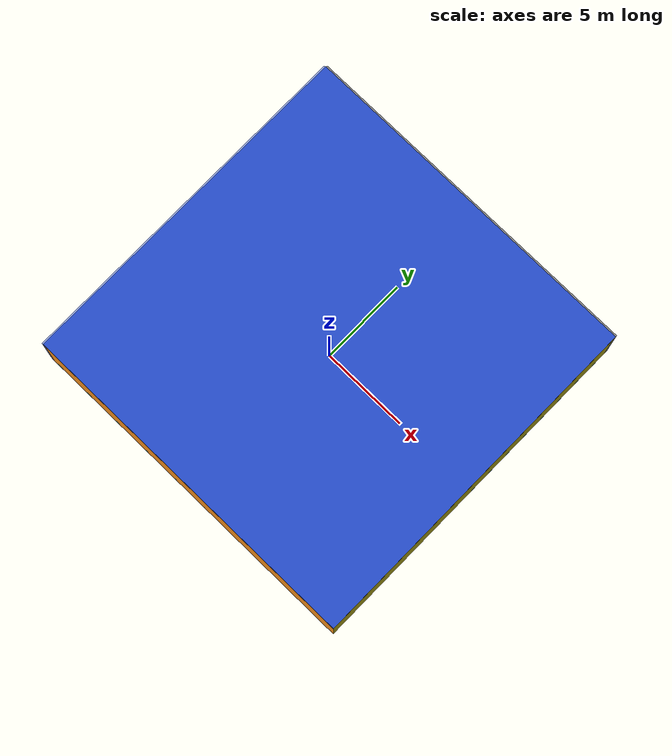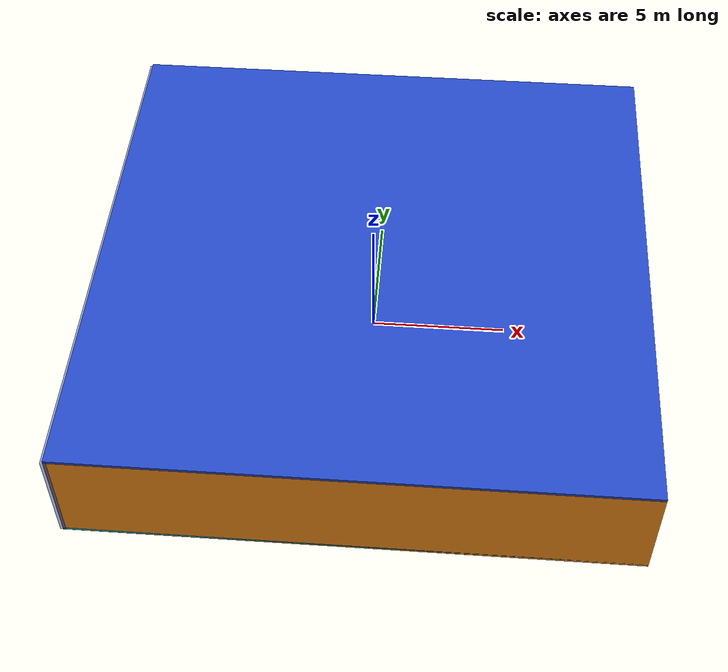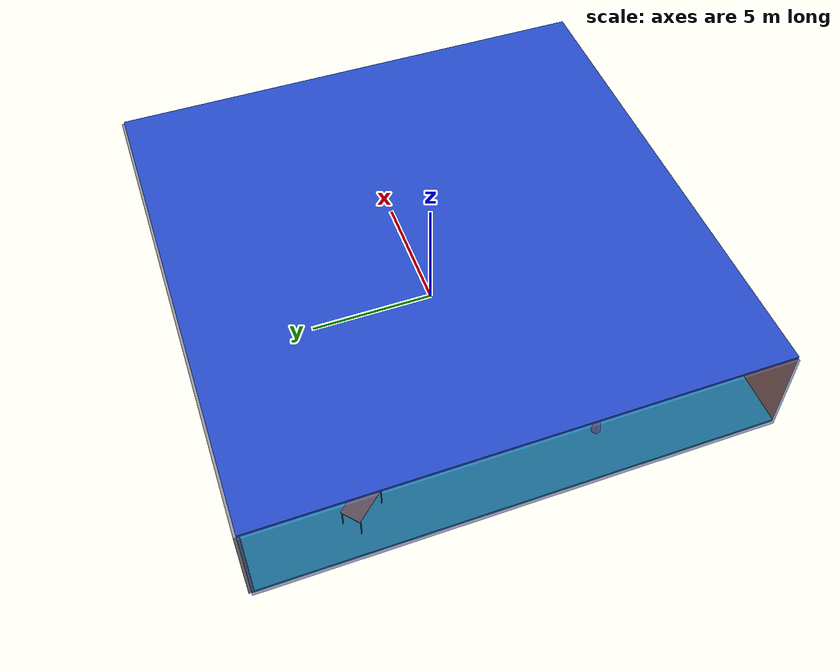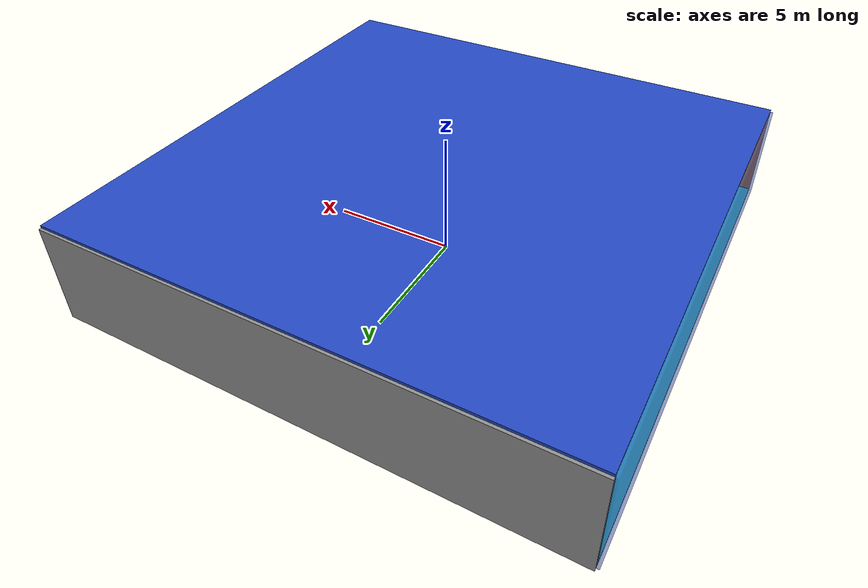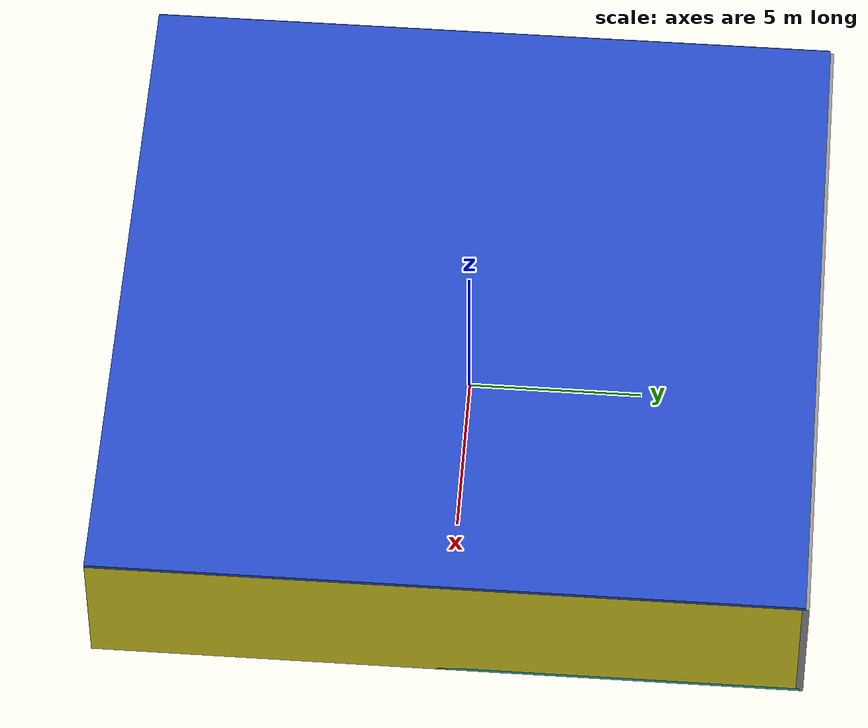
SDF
<sdf version="1.4">
 <world name="default">
  <physics type="ode">
   <max_step_size>0.001</max_step_size>
   <real_time_factor>1</real_time_factor>
   <real_time_update_rate>1000</real_time_update_rate>
   <gravity>0 0 -9.8</gravity>
  </physics>
  <scene><ambient>0.4 0.4 0.4 1</ambient><background>0.7 0.7 0.7 1</background><shadows>1</shadows></scene>
  <model name="Surrounding">
   <static>1</static>
   <link name="Ceiling">
    <collision name="Ceiling_Collision"><geometry><box><size>20 20 0.1</size></box></geometry></collision>
    <visual name="Ceiling_Visual">
     <geometry><box><size>20 20 0.1</size></box></geometry>
     <material>
      <script><uri>file://media/materials/scripts/gazebo.material</uri><name>Gazebo/Blue</name></script>
     </material>
    </visual>
    <pose>0 0 4.05 0 0 0</pose>
   </link>
   <link name="Wall_South">
    <collision name="Wall_South_Collision">
     <geometry><box><size>20 0 4</size></box></geometry>
     <pose>0 0 2 0 -0 0</pose>
    </collision>
    <visual name="Wall_South_Visual">
     <pose>0 0 2 0 -0 0</pose>
     <geometry><box><size>20 0 4</size></box></geometry>
     <material>
      <script><uri>file://media/materials/scripts/gazebo.material</uri><name>Gazebo/Orange</name></script>
     </material>
    </visual>
    <velocity_decay><linear>0</linear><angular>0</angular></velocity_decay>
    <pose>0 -10 0 0 -0 0</pose>
   </link>
   <link name="Wall_East">
    <collision name="Wall_21_Collision">
     <geometry><box><size>20 0 4</size></box></geometry>
     <pose>0 0 2 0 -0 0</pose>
    </collision>
    <visual name="Wall_21_Visual">
     <pose>0 0 2 0 -0 0</pose>
     <geometry><box><size>20 0 4</size></box></geometry>
     <material>
      <script><uri>file://media/materials/scripts/gazebo.material</uri><name>Gazebo/Yellow</name></script>
     </material>
    </visual>
    <velocity_decay><linear>0</linear><angular>0</angular></velocity_decay>
    <pose>10 0 0 0 -0 1.5708</pose>
   </link>
   <link name="Wall_North">
    <collision name="Wall_22_Collision">
     <geometry><box><size>20 0.2 4</size></box></geometry>
     <pose>0 0 2 0 -0 0</pose>
    </collision>
    <visual name="Wall_22_Visual">
     <pose>0 0 2 0 -0 0</pose>
     <geometry><box><size>20 0.2 4</size></box></geometry>
     <material>
      <script><uri>file://media/materials/scripts/gazebo.material</uri><name>Gazebo/Grey</name></script>
     </material>
    </visual>
    <velocity_decay><linear>0</linear><angular>0</angular></velocity_decay>
    <pose>0 10 0 0 -0 0</pose>
   </link>
   <link name="Wall_West">
    <collision name="Wall_23_Collision">
     <geometry><box><size>20 0.2 4</size></box></geometry>
     <pose>0 0 2 0 -0 0</pose>
    </collision>
    <visual name="Wall_23_Visual">
     <pose>0 0 2 0 -0 0</pose>
     <geometry><box><size>20 0.2 4</size></box></geometry>
     <material>
      <script><uri>file://media/materials/scripts/gazebo.material</uri><name>Gazebo/BlueTransparent</name></script>
     </material>
    </visual>
    <velocity_decay><linear>0</linear><angular>0</angular></velocity_decay>
    <pose>-10 0 0 0 0 -1.5708</pose>
   </link>
   <link name="Ground_link">
    <collision name="collision">
     <pose>0 0 .05 0 -0 0</pose>
     <geometry><box><size>20 20 0.1</size></box></geometry>
    </collision>
    <visual name="visual">
     <pose>0 0 .05 0 -0 0</pose>
     <geometry><box><size>20 20 0.1</size></box></geometry>
     <material>
      <script><uri>file://media/materials/scripts/gazebo.material</uri><name>Gazebo/TurquoiseGlow</name></script>
     </material>
    </visual>
   </link>
   <static>1</static>
  </model>
  <spherical_coordinates>
   <surface_model>EARTH_WGS84</surface_model>
   <latitude_deg>0</latitude_deg>
   <longitude_deg>0</longitude_deg>
   <elevation>0</elevation>
   <heading_deg>0</heading_deg>
  </spherical_coordinates>
  <light name="lightball_0" type="diffuse">
   <diffuse>0.8 0.8 0.8 1</diffuse>
   <specular>0.2 0.2 0.2 1</specular>
   <attenuation>
    <range>100</range>
    <constant>0.7</constant>
    <linear>0.01</linear>
    <quadratic>0.001</quadratic>
   </attenuation>
   <direction>-0.5 0.1 -0.9</direction>
   <pose>-1.34918649359 0.78552613468 0.612680464589 0 0 0</pose>
  </light>
  <light name="lightball_1" type="diffuse">
   <diffuse>0.8 0.8 0.8 1</diffuse>
   <specular>0.2 0.2 0.2 1</specular>
   <attenuation>
    <range>100</range>
    <constant>0.7</constant>
    <linear>0.01</linear>
    <quadratic>0.001</quadratic>
   </attenuation>
   <direction>-0.5 0.1 -0.9</direction>
   <pose>-8.52942798488 9.39553108357 1.13385988749 0 0 0</pose>
  </light>
  <light name="lightball_2" type="diffuse">
   <diffuse>0.8 0.8 0.8 1</diffuse>
   <specular>0.2 0.2 0.2 1</specular>
   <attenuation>
    <range>100</range>
    <constant>0.7</constant>
    <linear>0.01</linear>
    <quadratic>0.001</quadratic>
   </attenuation>
   <direction>-0.5 0.1 -0.9</direction>
   <pose>-9.25938870937 3.19524379244 2.32857684205 0 0 0</pose>
  </light>
  <light name="lightball_3" type="diffuse">
   <diffuse>0.8 0.8 0.8 1</diffuse>
   <specular>0.2 0.2 0.2 1</specular>
   <attenuation>
    <range>100</range>
    <constant>0.7</constant>
    <linear>0.01</linear>
    <quadratic>0.001</quadratic>
   </attenuation>
   <direction>-0.5 0.1 -0.9</direction>
   <pose>-0.812770050484 6.27235817217 2.86685565929 0 0 0</pose>
  </light>
  <light name="lightball_4" type="diffuse">
   <diffuse>0.8 0.8 0.8 1</diffuse>
   <specular>0.2 0.2 0.2 1</specular>
   <attenuation>
    <range>100</range>
    <constant>0.7</constant>
    <linear>0.01</linear>
    <quadratic>0.001</quadratic>
   </attenuation>
   <direction>-0.5 0.1 -0.9</direction>
   <pose>-5.50176960266 -1.98227586787 3.24555393658 0 0 0</pose>
  </light>
  <light name="lightball_5" type="diffuse">
   <diffuse>0.8 0.8 0.8 1</diffuse>
   <specular>0.2 0.2 0.2 1</specular>
   <attenuation>
    <range>100</range>
    <constant>0.7</constant>
    <linear>0.01</linear>
    <quadratic>0.001</quadratic>
   </attenuation>
   <direction>-0.5 0.1 -0.9</direction>
   <pose>-9.45530383097 -5.06980548927 2.16697925613 0 0 0</pose>
  </light>
  <include>
   <uri>model://construction_cone</uri>
   <pose>-8.14424935312 -3.58198389253 0 0 0 1.58117534247</pose>
  </include>
  <include><uri>model://table</uri><pose>-8.48784648962 5.6158548532 0 0 0 2.28789998699</pose></include>
  <include><uri>model://table</uri><pose>-3.31262709405 -2.45190519635 0 0 0 0.614201638193</pose></include>
  <include><uri>model://cabinet</uri><pose>-3.95915817462 4.68295586886 0 0 0 2.43107321986</pose></include>
  <include><uri>model://cabinet</uri><pose>1.4393277036 -4.36366143226 0 0 0 0.352443281786</pose></include>
  <include>
   <uri>model://robocup_3Dsim_goal</uri>
   <pose>3.82417206503 7.05099818539 0 0 0 2.63649432399</pose>
  </include>
  <include><uri>model://cabinet</uri><pose>7.55090096781 -1.03527217798 0 0 0 2.12526306939</pose></include>
 </world>
</sdf>

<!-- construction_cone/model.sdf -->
<sdf version="1.5">
  <model name="Construction Cone">
    <link name="link">
      <collision name="collision">
        <geometry>
          <mesh>
            <scale>10 10 10</scale>
            <uri>file://isr-testbed/construction_cone/meshes/construction_cone.dae</uri>
          </mesh>
        </geometry>
      </collision>
      <visual name="visual">
        <geometry>
          <mesh>
            <scale>10 10 10</scale>
            <uri>file://isr-testbed/construction_cone/meshes/construction_cone.dae</uri>
          </mesh>
        </geometry>
      </visual>
    </link>
  </model>
</sdf>

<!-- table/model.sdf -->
<sdf version="1.5">
  <model name="table">
    <static>true</static>
    <link name="link">
      <collision name="surface">
        <pose>0 0 1.0 0 0 0</pose>
        <geometry>
          <box>
            <size>1.5 0.8 0.03</size>
          </box>
        </geometry>
        <surface>
          <friction>
            <ode>
              <mu>0.6</mu>
              <mu2>0.6</mu2>
            </ode>
          </friction>
        </surface>
      </collision>
      <visual name="visual1">
        <pose>0 0 1.0 0 0 0</pose>
        <geometry>
          <box>
            <size>1.5 0.8 0.03</size>
          </box>
        </geometry>
        <material>
          <script>
            <uri>model://media/materials/scripts/gazebo.material</uri>
            <name>Gazebo/Wood</name>
          </script>
        </material>
      </visual>
      <collision name="front_left_leg">
        <pose>0.68 0.38 0.5 0 0 0</pose>
        <geometry>
          <cylinder>
            <radius>0.02</radius>
            <length>1.0</length>
          </cylinder>
        </geometry>
      </collision>
      <visual name="front_left_leg">
        <pose>0.68 0.38 0.5 0 0 0</pose>
        <geometry>
          <cylinder>
            <radius>0.02</radius>
            <length>1.0</length>
          </cylinder>
        </geometry>
        <material>
          <script>
            <uri>model://media/materials/scripts/gazebo.material</uri>
            <name>Gazebo/Grey</name>
          </script>
        </material>
      </visual>
      <collision name="front_right_leg">
        <pose>0.68 -0.38 0.5 0 0 0</pose>
        <geometry>
          <cylinder>
            <radius>0.02</radius>
            <length>1.0</length>
          </cylinder>
        </geometry>
      </collision>
      <visual name="front_right_leg">
        <pose>0.68 -0.38 0.5 0 0 0</pose>
        <geometry>
          <cylinder>
            <radius>0.02</radius>
            <length>1.0</length>
          </cylinder>
        </geometry>
        <material>
          <script>
            <uri>model://media/materials/scripts/gazebo.material</uri>
            <name>Gazebo/Grey</name>
          </script>
        </material>
      </visual>
      <collision name="back_right_leg">
        <pose>-0.68 -0.38 0.5 0 0 0</pose>
        <geometry>
          <cylinder>
            <radius>0.02</radius>
            <length>1.0</length>
          </cylinder>
        </geometry>
      </collision>
      <visual name="back_right_leg">
        <pose>-0.68 -0.38 0.5 0 0 0</pose>
        <geometry>
          <cylinder>
            <radius>0.02</radius>
            <length>1.0</length>
          </cylinder>
        </geometry>
        <material>
          <script>
            <uri>model://media/materials/scripts/gazebo.material</uri>
            <name>Gazebo/Grey</name>
          </script>
        </material>
      </visual>
      <collision name="back_left_leg">
        <pose>-0.68 0.38 0.5 0 0 0</pose>
        <geometry>
          <cylinder>
            <radius>0.02</radius>
            <length>1.0</length>
          </cylinder>
        </geometry>
      </collision>
      <visual name="back_left_leg">
        <pose>-0.68 0.38 0.5 0 0 0</pose>
        <geometry>
          <cylinder>
            <radius>0.02</radius>
            <length>1.0</length>
          </cylinder>
        </geometry>
        <material>
          <script>
            <uri>model://media/materials/scripts/gazebo.material</uri>
            <name>Gazebo/Grey</name>
          </script>
        </material>
      </visual>
    </link>
  </model>
</sdf>

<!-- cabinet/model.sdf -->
<sdf version="1.5">
  <model name="cabinet">
    <static>true</static>
    <link name="cabinet_bottom_plate">
      <inertial>
        <pose>0 0 -1 0 0 0</pose>
        <inertia>
          <ixx>2.050000</ixx>
          <ixy>0</ixy>
          <ixz>0</ixz>
          <iyy>2.050000</iyy>
          <iyz>0</iyz>
          <izz>2.050000</izz>
        </inertia>
        <mass>25.000000</mass>
      </inertial>
      <collision name="cabinet_bottom_plate_geom">
        <pose>0 0 0.010000 0 0 0</pose>
        <geometry>
          <box>
            <size>0.450000 0.450000 0.020000</size>
          </box>
        </geometry>
      </collision>
      <visual name="cabinet_bottom_plate_geom_visual">
        <pose>0 0 0.010000 0 0 0</pose>
        <geometry>
          <box>
            <size>0.450000 0.450000 0.020000</size>
          </box>
        </geometry>
        <material>
          <script>
            <uri>model://media/materials/scripts/gazebo.material</uri>
            <name>Gazebo/Wood</name>
          </script>
        </material>
      </visual>
      <collision name="cabinet_bottom_plate_geom_cabinet_back_plate">
        <pose>0.235000 0 0.510000 0 0 0</pose>
        <geometry>
          <box>
            <size>0.020000 0.450000 1.020000</size>
          </box>
        </geometry>
      </collision>
      <visual name="cabinet_bottom_plate_geom_cabinet_back_plate_visual">
        <pose>0.235000 0 0.510000 0 0 0</pose>
        <geometry>
          <box>
            <size>0.020000 0.450000 1.020000</size>
          </box>
        </geometry>
        <material>
          <script>
            <uri>model://media/materials/scripts/gazebo.material</uri>
            <name>Gazebo/Wood</name>
          </script>
        </material>
      </visual>
      <collision name="cabinet_bottom_plate_geom_cabinet_left_plate">
        <pose>0 0.235000 0.510000 0 0 0</pose>
        <geometry>
          <box>
            <size>0.450000 0.020000 1.020000</size>
          </box>
        </geometry>
      </collision>
      <visual name="cabinet_bottom_plate_geom_cabinet_left_plate_visual">
        <pose>0 0.235000 0.510000 0 0 0</pose>
        <geometry>
          <box>
            <size>0.450000 0.020000 1.020000</size>
          </box>
        </geometry>
        <material>
          <script>
            <uri>model://media/materials/scripts/gazebo.material</uri>
            <name>Gazebo/Wood</name>
          </script>
        </material>
      </visual>
      <collision name="cabinet_bottom_plate_geom_cabinet_middle_plate">
        <pose>0 0 0.510000 0 0 0</pose>
        <geometry>
          <box>
            <size>0.450000 0.450000 0.020000</size>
          </box>
        </geometry>
      </collision>
      <visual name="cabinet_bottom_plate_geom_cabinet_middle_plate_visual">
        <pose>0 0 0.510000 0 0 0</pose>
        <geometry>
          <box>
            <size>0.450000 0.450000 0.020000</size>
          </box>
        </geometry>
        <material>
          <script>
            <uri>model://media/materials/scripts/gazebo.material</uri>
            <name>Gazebo/Wood</name>
          </script>
        </material>
      </visual>
      <collision name="cabinet_bottom_plate_geom_cabinet_right_plate">
        <pose>0 -0.235000 0.510000 0 0 0</pose>
        <geometry>
          <box>
            <size>0.450000 0.020000 1.020000</size>
          </box>
        </geometry>
      </collision>
      <visual name="cabinet_bottom_plate_geom_cabinet_right_plate_visual">
        <pose>0 -0.235000 0.510000 0 0 0</pose>
        <geometry>
          <box>
            <size>0.450000 0.020000 1.020000</size>
          </box>
        </geometry>
        <material>
          <script>
            <uri>model://media/materials/scripts/gazebo.material</uri>
            <name>Gazebo/Wood</name>
          </script>
        </material>
      </visual>
      <collision name="cabinet_bottom_plate_geom_cabinet_top_plate">
        <pose>0 0 1.010000 0 0 0</pose>
        <geometry>
          <box>
            <size>0.450000 0.450000 0.020000</size>
          </box>
        </geometry>
      </collision>
      <visual name="cabinet_bottom_plate_geom_cabinet_top_plate_visual">
        <pose>0 0 1.010000 0 0 0</pose>
        <geometry>
          <box>
            <size>0.450000 0.450000 0.020000</size>
          </box>
        </geometry>
        <material>
          <script>
            <uri>model://media/materials/scripts/gazebo.material</uri>
            <name>Gazebo/Wood</name>
          </script>
        </material>
      </visual>
    </link>
  </model>
</sdf>

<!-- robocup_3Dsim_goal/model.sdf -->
<sdf version="1.5">
  <model name="robocup_3d_goal">
    <static>true</static>
    <link name="left_post">
      <pose>0 1.05 0.45 0 0 0</pose>
      <collision name="collision">
        <geometry>
          <cylinder>
            <radius>0.05</radius>
            <length>0.9</length>
          </cylinder>
        </geometry>
      </collision>
      <visual name="visual">
        <geometry>
          <cylinder>
            <radius>0.05</radius>
            <length>0.9</length>
          </cylinder>
        </geometry>
        <material>
          <script>
            <uri>file://media/materials/scripts/gazebo.material</uri>
            <name>Gazebo/ZincYellow</name>
          </script>
        </material>
      </visual>
    </link>
    <link name="left_support_horiz_lower">
      <pose>0.30 1.05 0.01 0 0 0</pose>
      <collision name="collision">
        <geometry>
          <box>
            <size>0.50 0.02 0.02</size>
          </box>
        </geometry>
      </collision>
      <visual name="visual">
        <geometry>
          <box>
            <size>0.50 0.02 0.02</size>
          </box>
        </geometry>
        <material>
          <script>
            <uri>file://media/materials/scripts/gazebo.material</uri>
            <name>Gazebo/White</name>
          </script>
        </material>
      </visual>
    </link>
    <link name="left_support_horiz_upper">
      <pose>0.30 1.05 0.79 0 0 0</pose>
      <collision name="collision">
        <geometry>
          <box>
            <size>0.50 0.02 0.02</size>
          </box>
        </geometry>
      </collision>
      <visual name="visual">
        <geometry>
          <box>
            <size>0.50 0.02 0.02</size>
          </box>
        </geometry>
        <material>
          <script>
            <uri>file://media/materials/scripts/gazebo.material</uri>
            <name>Gazebo/White</name>
          </script>
        </material>
      </visual>
    </link>
    <link name="left_support_vertical">
      <pose>0.56 1.05 0.4 0 1.5708 0</pose>
      <collision name="collision">
        <geometry>
          <box>
            <size>0.80 0.02 0.02</size>
          </box>
        </geometry>
      </collision>
      <visual name="visual">
        <geometry>
          <box>
            <size>0.80 0.02 0.02</size>
          </box>
        </geometry>
        <material>
          <script>
            <uri>file://media/materials/scripts/gazebo.material</uri>
            <name>Gazebo/White</name>
          </script>
        </material>
      </visual>
    </link>
    <link name="right_support_horiz_lower">
      <pose>0.30 -1.05 0.01 0 0 0</pose>
      <collision name="collision">
        <geometry>
          <box>
            <size>0.50 0.02 0.02</size>
          </box>
        </geometry>
      </collision>
      <visual name="visual">
        <geometry>
          <box>
            <size>0.50 0.02 0.02</size>
          </box>
        </geometry>
        <material>
          <script>
            <uri>file://media/materials/scripts/gazebo.material</uri>
            <name>Gazebo/White</name>
          </script>
        </material>
      </visual>
    </link>
    <link name="right_support_horiz_upper">
      <pose>0.30 -1.05 0.79 0 0 0</pose>
      <collision name="collision">
        <geometry>
          <box>
            <size>0.50 0.02 0.02</size>
          </box>
        </geometry>
      </collision>
      <visual name="visual">
        <geometry>
          <box>
            <size>0.50 0.02 0.02</size>
          </box>
        </geometry>
        <material>
          <script>
            <uri>file://media/materials/scripts/gazebo.material</uri>
            <name>Gazebo/White</name>
          </script>
        </material>
      </visual>
    </link>
    <link name="right_support_vertical">
      <pose>0.56 -1.05 0.4 0 1.5708 0</pose>
      <collision name="collision">
        <geometry>
          <box>
            <size>0.80 0.02 0.02</size>
          </box>
        </geometry>
      </collision>
      <visual name="visual">
        <geometry>
          <box>
            <size>0.80 0.02 0.02</size>
          </box>
        </geometry>
        <material>
          <script>
            <uri>file://media/materials/scripts/gazebo.material</uri>
            <name>Gazebo/White</name>
          </script>
        </material>
      </visual>
    </link>
    <link name="center_support_horiz_lower">
      <pose>0.56 0 0.01 0 1.5708 0</pose>
      <collision name="collision">
        <geometry>
          <box>
            <size>0.02 2.08 0.02</size>
          </box>
        </geometry>
      </collision>
      <visual name="visual">
        <geometry>
          <box>
            <size>0.02 2.08 0.02</size>
          </box>
        </geometry>
        <material>
          <script>
            <uri>file://media/materials/scripts/gazebo.material</uri>
            <name>Gazebo/White</name>
          </script>
        </material>
      </visual>
    </link>
    <link name="center_support_horiz_upper">
      <pose>0.56 0 0.79 0 1.5708 0</pose>
      <collision name="collision">
        <geometry>
          <box>
            <size>0.02 2.08 0.02</size>
          </box>
        </geometry>
      </collision>
      <visual name="visual">
        <geometry>
          <box>
            <size>0.02 2.08 0.02</size>
          </box>
        </geometry>
        <material>
          <script>
            <uri>file://media/materials/scripts/gazebo.material</uri>
            <name>Gazebo/White</name>
          </script>
        </material>
      </visual>
    </link>
    <link name="right_post">
      <pose>0 -1.05 0.45 0 0 0</pose>
      <collision name="collision">
        <geometry>
          <cylinder>
            <radius>0.05</radius>
            <length>0.9</length>
          </cylinder>
        </geometry>
      </collision>
      <visual name="visual">
        <geometry>
          <cylinder>
            <radius>0.05</radius>
            <length>0.9</length>
          </cylinder>
        </geometry>
        <material>
          <script>
            <uri>file://media/materials/scripts/gazebo.material</uri>
            <name>Gazebo/ZincYellow</name>
          </script>
        </material>
      </visual>
    </link>
    <link name="crossbar">
      <pose>0 0 0.85 1.57 1.57 0</pose>
      <collision name="collision">
        <geometry>
          <cylinder>
            <radius>0.05</radius>
            <length>2.0</length>
          </cylinder>
        </geometry>
      </collision>
      <visual name="visual">
        <geometry>
          <cylinder>
            <radius>0.05</radius>
            <length>2.0</length>
          </cylinder>
        </geometry>
        <material>
          <script>
            <uri>file://media/materials/scripts/gazebo.material</uri>
            <name>Gazebo/ZincYellow</name>
          </script>
        </material>
      </visual>
    </link>
    <link name="center_net">
      <pose>0.56 0 0.40 0 0 0</pose>
      <collision name="collision">
        <geometry>
          <box>
            <size>0.01 2.1 0.80</size>
          </box>
        </geometry>
      </collision>
      <visual name="visual">
        <geometry>
          <box>
            <size>0.01 2.1 0.80</size>
          </box>
        </geometry>
        <material>
          <script>
            <uri>model://../model_source/models/robocup09_spl_field/materials/scripts/</uri>
            <uri>model://../model_source/models/robocup09_spl_field/materials/textures/</uri>
            <name>RoboCup/Net</name>
          </script>
        </material>
      </visual>
    </link>
    <link name="left_net">
      <pose>0.30 1.05 0.40 0 0 0</pose>
      <collision name="collision">
        <geometry>
          <box>
            <size>0.50 0.01 0.76</size>
          </box>
        </geometry>
      </collision>
      <visual name="visual">
        <geometry>
          <box>
            <size>0.50 0.01 0.76</size>
          </box>
        </geometry>
        <material>
          <script>
            <uri>model://../model_source/models/robocup09_spl_field/materials/scripts/</uri>
            <uri>model://../model_source/models/robocup09_spl_field/materials/textures/</uri>
            <name>RoboCup/Net</name>
          </script>
        </material>
      </visual>
    </link>
    <link name="right_net">
      <pose>0.30 -1.05 0.40 0 0 0</pose>
      <collision name="collision">
        <geometry>
          <box>
            <size>0.50 0.01 0.76</size>
          </box>
        </geometry>
      </collision>
      <visual name="visual">
        <geometry>
          <box>
            <size>0.50 0.01 0.76</size>
          </box>
        </geometry>
        <material>
          <script>
            <uri>model://../model_source/models/robocup09_spl_field/materials/scripts/</uri>
            <uri>model://../model_source/models/robocup09_spl_field/materials/textures/</uri>
            <name>RoboCup/Net</name>
          </script>
        </material>
      </visual>
    </link>
  </model>
</sdf>
